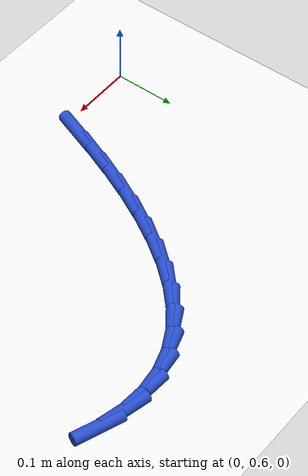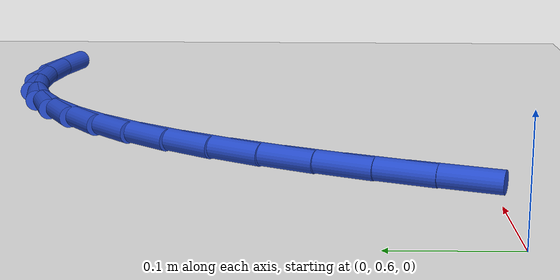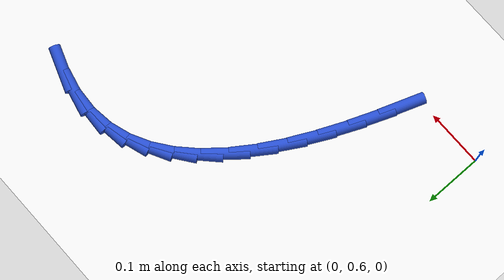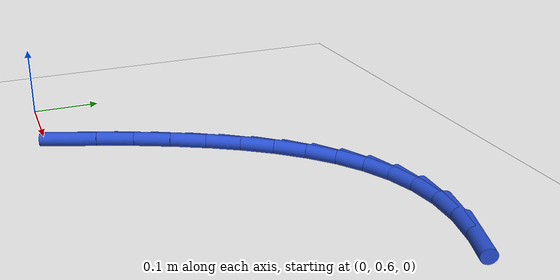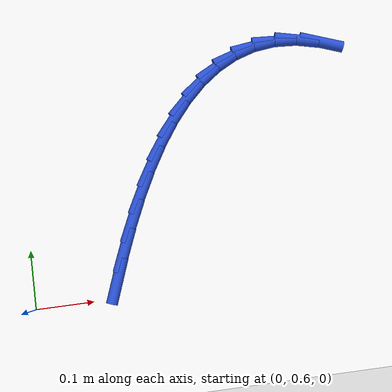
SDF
<sdf version="1.6">
 <world name="default">
  <model name="ground_plane">
   <static>1</static>
   <link name="link">
    <collision name="collision">
     <geometry><plane><normal>0 0 1</normal><size>100 100</size></plane></geometry>
     <surface><friction><ode><mu>100</mu><mu2>50</mu2></ode></friction></surface>
    </collision>
    <visual name="visual">
     <cast_shadows>0</cast_shadows>
     <geometry><plane><normal>0 0 1</normal><size>100 100</size></plane></geometry>
     <material>
      <script><uri>file://media/materials/scripts/gazebo.material</uri><name>Gazebo/WhiteGlow</name></script>
     </material>
    </visual>
   </link>
  </model>
  <model name="line">
   <link name="link_14">
    <pose>0.14461130483524764 0.6302637326289131 0.01 0 1.57 1.218201872596353</pose>
    <collision name="collision">
     <geometry><cylinder><radius>0.01</radius><length>0.08</length></cylinder></geometry>
    </collision>
    <visual name="visual">
     <material>
      <script><name>Gazebo/Blue</name><uri>file://media/materials/scripts/gazebo.material</uri></script>
     </material>
     <geometry><cylinder><radius>0.01</radius><length>0.08</length></cylinder></geometry>
    </visual>
   </link>
   <link name="link_15">
    <pose>0.1629050053032804 0.6799787331322517 0.01 0 1.57 1.1844764243952701</pose>
    <collision name="collision">
     <geometry><cylinder><radius>0.01</radius><length>0.08</length></cylinder></geometry>
    </collision>
    <visual name="visual">
     <material>
      <script><name>Gazebo/Blue</name><uri>file://media/materials/scripts/gazebo.material</uri></script>
     </material>
     <geometry><cylinder><radius>0.01</radius><length>0.08</length></cylinder></geometry>
    </visual>
   </link>
   <link name="link_16">
    <pose>0.18254821974957106 0.7282706973426643 0.01 0 1.57 1.1436501801805115</pose>
    <collision name="collision">
     <geometry><cylinder><radius>0.01</radius><length>0.08</length></cylinder></geometry>
    </collision>
    <visual name="visual">
     <material>
      <script><name>Gazebo/Blue</name><uri>file://media/materials/scripts/gazebo.material</uri></script>
     </material>
     <geometry><cylinder><radius>0.01</radius><length>0.08</length></cylinder></geometry>
    </visual>
   </link>
   <link name="link_17">
    <pose>0.20363911443858793 0.7746068554846547 0.01 0 1.57 1.0942257042189334</pose>
    <collision name="collision">
     <geometry><cylinder><radius>0.01</radius><length>0.08</length></cylinder></geometry>
    </collision>
    <visual name="visual">
     <material>
      <script><name>Gazebo/Blue</name><uri>file://media/materials/scripts/gazebo.material</uri></script>
     </material>
     <geometry><cylinder><radius>0.01</radius><length>0.08</length></cylinder></geometry>
    </visual>
   </link>
   <link name="link_18">
    <pose>0.22627585563479913 0.8184544377827263 0.01 0 1.57 1.0342578296235792</pose>
    <collision name="collision">
     <geometry><cylinder><radius>0.01</radius><length>0.08</length></cylinder></geometry>
    </collision>
    <visual name="visual">
     <material>
      <script><name>Gazebo/Blue</name><uri>file://media/materials/scripts/gazebo.material</uri></script>
     </material>
     <geometry><cylinder><radius>0.01</radius><length>0.08</length></cylinder></geometry>
    </visual>
   </link>
   <link name="link_19">
    <pose>0.2505566096026726 0.8592806744613821 0.01 0 1.57 0.9612877724573009</pose>
    <collision name="collision">
     <geometry><cylinder><radius>0.01</radius><length>0.08</length></cylinder></geometry>
    </collision>
    <visual name="visual">
     <material>
      <script><name>Gazebo/Blue</name><uri>file://media/materials/scripts/gazebo.material</uri></script>
     </material>
     <geometry><cylinder><radius>0.01</radius><length>0.08</length></cylinder></geometry>
    </visual>
   </link>
   <link name="link_20">
    <pose>0.2765795426066766 0.8965527957451256 0.01 0 1.57 0.8723542074193075</pose>
    <collision name="collision">
     <geometry><cylinder><radius>0.01</radius><length>0.08</length></cylinder></geometry>
    </collision>
    <visual name="visual">
     <material>
      <script><name>Gazebo/Blue</name><uri>file://media/materials/scripts/gazebo.material</uri></script>
     </material>
     <geometry><cylinder><radius>0.01</radius><length>0.08</length></cylinder></geometry>
    </visual>
   </link>
   <link name="link_21">
    <pose>0.3044428209112792 0.9297380318584604 0.01 0 1.57 0.7642215388143908</pose>
    <collision name="collision">
     <geometry><cylinder><radius>0.01</radius><length>0.08</length></cylinder></geometry>
    </collision>
    <visual name="visual">
     <material>
      <script><name>Gazebo/Blue</name><uri>file://media/materials/scripts/gazebo.material</uri></script>
     </material>
     <geometry><cylinder><radius>0.01</radius><length>0.08</length></cylinder></geometry>
    </visual>
   </link>
   <link name="link_22">
    <pose>0.33424461078094847 0.95830361302589 0.01 0 1.57 0.6340740596291115</pose>
    <collision name="collision">
     <geometry><cylinder><radius>0.01</radius><length>0.08</length></cylinder></geometry>
    </collision>
    <visual name="visual">
     <material>
      <script><name>Gazebo/Blue</name><uri>file://media/materials/scripts/gazebo.material</uri></script>
     </material>
     <geometry><cylinder><radius>0.01</radius><length>0.08</length></cylinder></geometry>
    </visual>
   </link>
   <link name="link_23">
    <pose>0.36608307848015265 0.9817167694719173 0.01 0 1.57 0.48095103829503133</pose>
    <collision name="collision">
     <geometry><cylinder><radius>0.01</radius><length>0.08</length></cylinder></geometry>
    </collision>
    <visual name="visual">
     <material>
      <script><name>Gazebo/Blue</name><uri>file://media/materials/scripts/gazebo.material</uri></script>
     </material>
     <geometry><cylinder><radius>0.01</radius><length>0.08</length></cylinder></geometry>
    </visual>
   </link>
   <link name="link_24">
    <pose>0.40005639027335943 0.999444731421046 0.01 0 1.57 0.30779704752823633</pose>
    <collision name="collision">
     <geometry><cylinder><radius>0.01</radius><length>0.08</length></cylinder></geometry>
    </collision>
    <visual name="visual">
     <material>
      <script><name>Gazebo/Blue</name><uri>file://media/materials/scripts/gazebo.material</uri></script>
     </material>
     <geometry><cylinder><radius>0.01</radius><length>0.08</length></cylinder></geometry>
    </visual>
   </link>
   <link name="link_25">
    <pose>0.43626271242503745 1.0109547290977796 0.01 0 1.57 0.12287479742818654</pose>
    <collision name="collision">
     <geometry><cylinder><radius>0.01</radius><length>0.08</length></cylinder></geometry>
    </collision>
    <visual name="visual">
     <material>
      <script><name>Gazebo/Blue</name><uri>file://media/materials/scripts/gazebo.material</uri></script>
     </material>
     <geometry><cylinder><radius>0.01</radius><length>0.08</length></cylinder></geometry>
    </visual>
   </link>
   <link name="link_26">
    <pose>0.47480021119965465 1.0157139927266214 0.01 0 1.57 -0.06153886480215298</pose>
    <collision name="collision">
     <geometry><cylinder><radius>0.01</radius><length>0.08</length></cylinder></geometry>
    </collision>
    <visual name="visual">
     <material>
      <script><name>Gazebo/Blue</name><uri>file://media/materials/scripts/gazebo.material</uri></script>
     </material>
     <geometry><cylinder><radius>0.01</radius><length>0.08</length></cylinder></geometry>
    </visual>
   </link>
   <link name="link_27">
    <pose>0.5157670528616787 1.013189752532075 0.01 0 1.57 -0.23293348251479826</pose>
    <collision name="collision">
     <geometry><cylinder><radius>0.01</radius><length>0.08</length></cylinder></geometry>
    </collision>
    <visual name="visual">
     <material>
      <script><name>Gazebo/Blue</name><uri>file://media/materials/scripts/gazebo.material</uri></script>
     </material>
     <geometry><cylinder><radius>0.01</radius><length>0.08</length></cylinder></geometry>
    </visual>
   </link>
   <link name="link_28">
    <pose>0.559250366901823 1.0028737796666098 0.01 0 1.57 -0.3540604103288939</pose>
    <collision name="collision">
     <geometry><cylinder><radius>0.01</radius><length>0.08</length></cylinder></geometry>
    </collision>
    <visual name="visual">
     <material>
      <script><name>Gazebo/Blue</name><uri>file://media/materials/scripts/gazebo.material</uri></script>
     </material>
     <geometry><cylinder><radius>0.01</radius><length>0.08</length></cylinder></geometry>
    </visual>
   </link>
  </model>
 </world>
</sdf>
